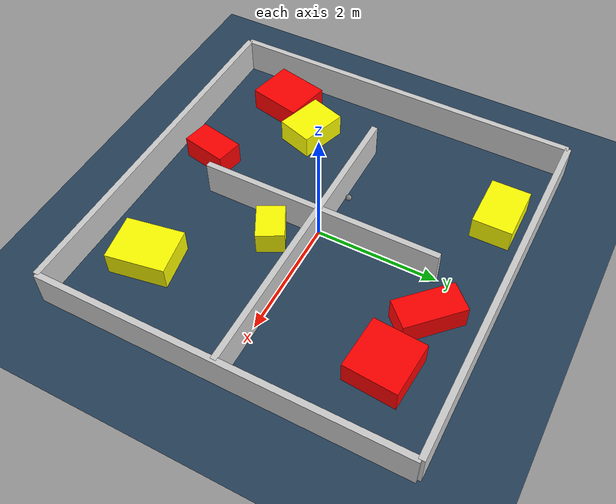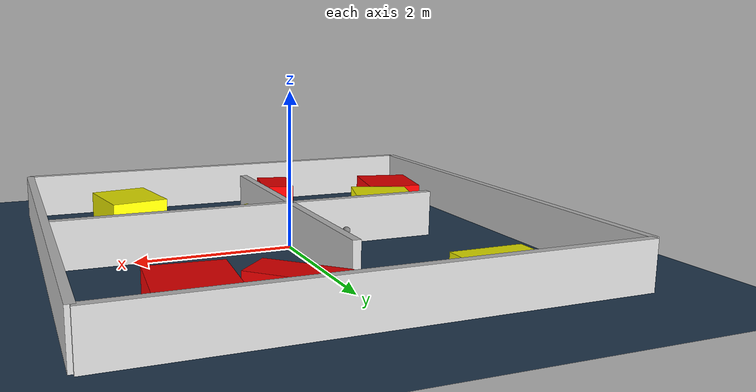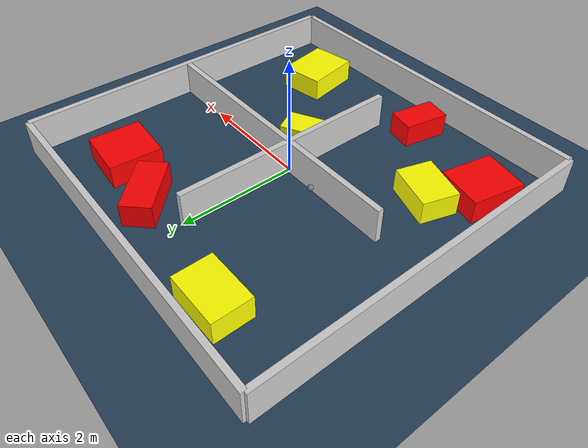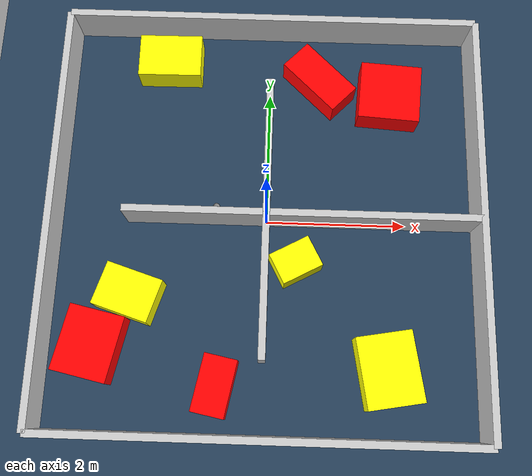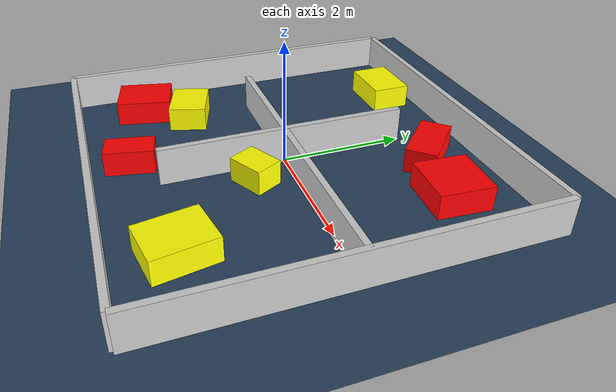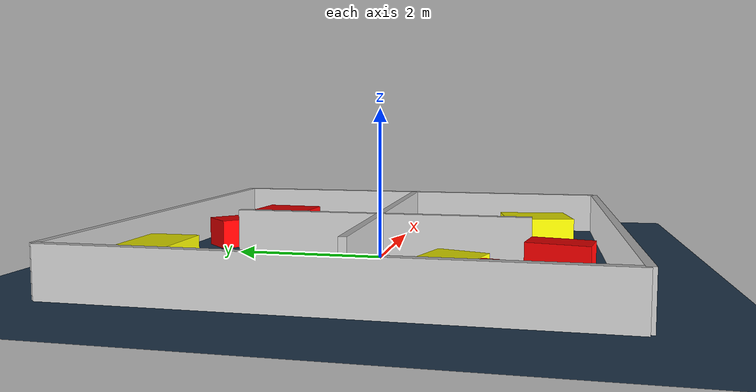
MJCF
<?xml version="1.0" ?>
<mujoco model="generated_environment">
  <option timestep="0.01" integrator="RK4" cone="elliptic"/>
  <default>
    <geom density="1"/>
  </default>
  <asset>
    <texture builtin="gradient" height="3072" rgb1="0.3 0.5 0.7" rgb2="0 0 0" type="skybox" width="512"/>
    <texture builtin="checker" height="300" mark="edge" markrgb="0.8 0.8 0.8" name="groundplane" rgb1="0.2 0.3 0.4" rgb2="0.1 0.2 0.3" type="2d" width="300"/>
    <material name="groundplane" reflectance="0.2" texrepeat="5 5" texture="groundplane" texuniform="true"/>
    <material name="robot" rgba="0.0 1.0 0.0 1"/>
  </asset>
  <worldbody>
    <light dir="0 0 -1" directional="true" pos="0 0 1.5"/>
    <geom condim="4" friction="1.0 0.005 0.001" material="groundplane" name="floor" size="0 0 0.05" type="plane"/>
    <body name="walls">
      <geom name="wall_1" condim="4" pos="-3.0 0.0 0.3" rgba="0.800000011920929 0.800000011920929 0.800000011920929 1.0" size="0.05 3.0 0.3" type="box"/>
      <geom name="wall_2" condim="4" pos="3.0 0.0 0.3" rgba="0.800000011920929 0.800000011920929 0.800000011920929 1.0" size="0.05 3.0 0.3" type="box"/>
      <geom name="wall_3" condim="4" pos="0.0 -3.0 0.3" rgba="0.800000011920929 0.800000011920929 0.800000011920929 1.0" size="3.0 0.05 0.3" type="box"/>
      <geom name="wall_4" condim="4" pos="0.0 3.0 0.3" rgba="0.800000011920929 0.800000011920929 0.800000011920929 1.0" size="3.0 0.05 0.3" type="box"/>
      <geom name="wall_5" condim="4" pos="1.5 0.0 0.3" rgba="0.800000011920929 0.800000011920929 0.800000011920929 1.0" size="1.5 0.05 0.3" type="box"/>
      <geom name="wall_6" condim="4" pos="-1.0 0.0 0.3" rgba="0.800000011920929 0.800000011920929 0.800000011920929 1.0" size="1.0 0.05 0.3" type="box"/>
      <geom name="wall_7" condim="4" pos="0.0 -1.0 0.3" rgba="0.800000011920929 0.800000011920929 0.800000011920929 1.0" size="0.05 1.0 0.3" type="box"/>
      <geom name="wall_8" condim="4" pos="0.0 1.0 0.3" rgba="0.800000011920929 0.800000011920929 0.800000011920929 1.0" size="0.05 1.0 0.3" type="box"/>
    </body>
    <body name="robot">
      <joint name="joint_x" type="slide" pos="0 0 0" axis="1 0 0"/>
      <joint name="joint_y" type="slide" pos="0 0 0" axis="0 1 0"/>
      <geom name="robot" type="sphere" pos="-0.7170440514010559 0.16353192322529742 0.2" size="0.05" mass="5." friction="1.0 0.005 0.0001" condim="4"/>
      <site name="sensor_ball"/>
    </body>
    <body name="obstacle_1_static">
      <geom name="obstacle_1_static" condim="4" pos="1.7612769695928696 1.9488611350738703 0.2" euler="0 0 356.0015567191767" friction="1.0 0.005 0.001" rgba="1 0 0 1" size="0.4446134036385634 0.4340253530878162 0.2" type="box"/>
    </body>
    <body name="obstacle_2_static">
      <geom name="obstacle_2_static" condim="4" pos="-2.327861383019031 -1.8344671314436294 0.2" euler="0 0 167.59201055376664" friction="1.0 0.005 0.001" rgba="1 0 0 1" size="0.38506544416258925 0.45369929206404797 0.2" type="box"/>
    </body>
    <body name="obstacle_3_movable">
      <geom name="obstacle_3_movable" condim="4" pos="-1.8616547297907993 -1.1303977311826883 0.2" euler="0 0 162.30270480366448" friction="1.0 0.005 0.001" rgba="1 1 0 1" size="0.4058048786027075 0.30808891188964743 0.2" type="box" mass="0.1"/>
      <joint type="free"/>
    </body>
    <body name="obstacle_4_static">
      <geom name="obstacle_4_static" condim="4" pos="0.7246655590018225 2.164045305553036 0.2" euler="0 0 45.88446593544234" friction="1.0 0.005 0.001" rgba="1 0 0 1" size="0.2484208325728286 0.5070163063997132 0.2" type="box"/>
    </body>
    <body name="obstacle_5_static">
      <geom name="obstacle_5_static" condim="4" pos="-0.6150669378544977 -2.3345029691366634 0.2" euler="0 0 168.4904484228701" friction="1.0 0.005 0.001" rgba="1 0 0 1" size="0.22912664878343736 0.3894693795577912 0.2" type="box"/>
    </body>
    <body name="obstacle_6_movable">
      <geom name="obstacle_6_movable" condim="4" pos="1.7053572613138965 -2.057182391253319 0.2" euler="0 0 9.861167435628735" friction="1.0 0.005 0.001" rgba="1 1 0 1" size="0.3883039925259659 0.48341548668462325 0.2" type="box" mass="0.1"/>
      <joint type="free"/>
    </body>
    <body name="obstacle_7_movable">
      <geom name="obstacle_7_movable" condim="4" pos="-1.5075207101777457 2.4397672270420427 0.2" euler="0 0 270.46000586029396" friction="1.0 0.005 0.001" rgba="1 1 0 1" size="0.3228680847366046 0.46178460161859963 0.2" type="box" mass="0.1"/>
      <joint type="free"/>
    </body>
    <body name="obstacle_8_movable">
      <geom name="obstacle_8_movable" condim="4" pos="0.42869372390189353 -0.6163906793872194 0.2" euler="0 0 208.06374597408478" friction="1.0 0.005 0.001" rgba="1 1 0 1" size="0.3026469051618073 0.22832069336255478 0.2" type="box" mass="0.1"/>
      <joint type="free"/>
    </body>
  </worldbody>
  <actuator>
    <motor name="actuator_x" joint="joint_x" gear="1" ctrlrange="-1 1"/>
    <motor name="actuator_y" joint="joint_y" gear="1" ctrlrange="-1 1"/>
  </actuator>
</mujoco>
